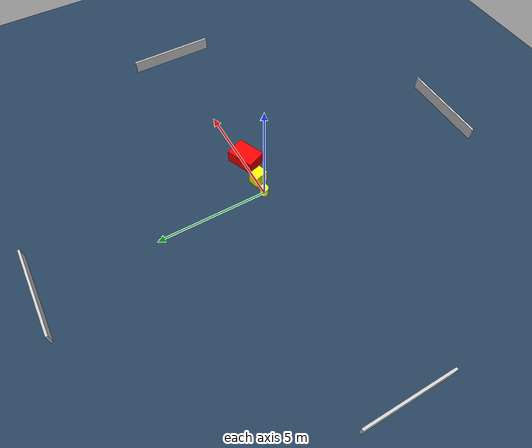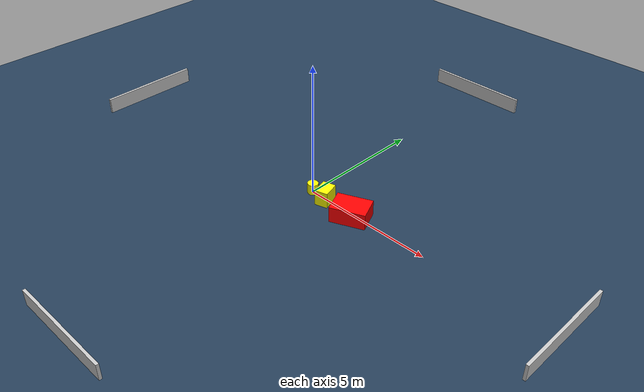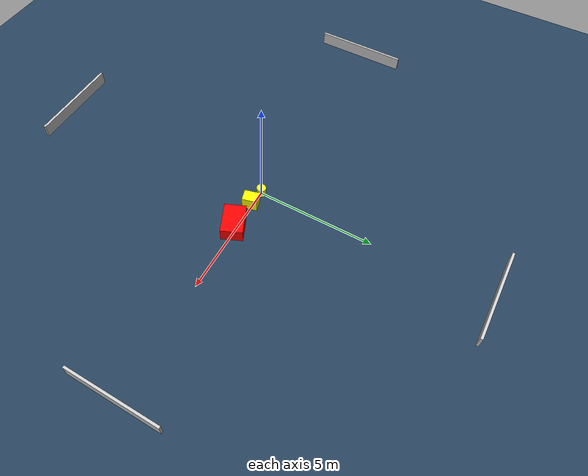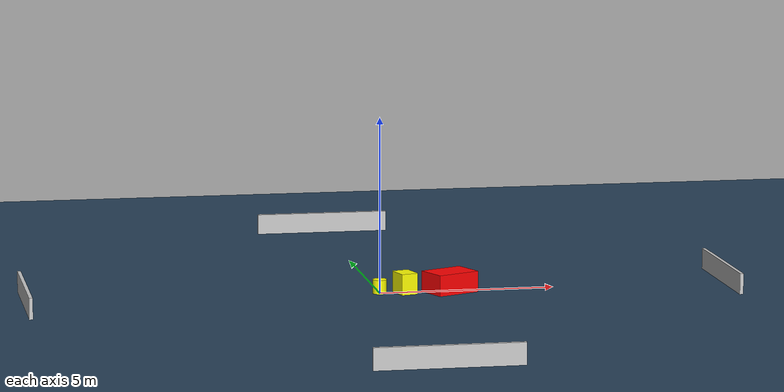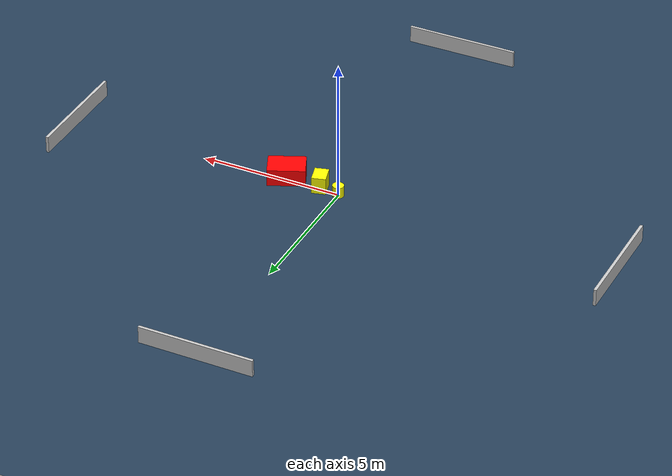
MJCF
<?xml version="1.0" ?>
<mujoco model="generated_environment">
  <option timestep="0.01" integrator="RK4" cone="elliptic"/>
  <default>
    <geom density="1"/>
  </default>
  <asset>
    <texture builtin="gradient" height="3072" name="skybox" rgb1="0.3 0.5 0.7" rgb2="0 0 0" type="skybox" width="512"/>
    <texture builtin="checker" height="300" name="groundplane" rgb1="0.2 0.3 0.4" rgb2="0.1 0.2 0.3" type="2d" width="300"/>
    <material name="groundplane" reflectance="0.2" texrepeat="5 5" texture="groundplane"/>
  </asset>
  <worldbody>
    <light dir="0 0 -1" directional="true" pos="0 0 1.5"/>
    <geom condim="3" friction="0.5 0.005 0.001" material="groundplane" name="floor" pos="0 0 0" size="0 0 0.05" type="plane"/>
    <body name="walls">
      <geom name="wall_1" condim="4" pos="-10.0 0.0 0.3" rgba="0.800000011920929 0.800000011920929 0.800000011920929 1.0" size="0.05 2.0 0.3" type="box"/>
      <geom name="wall_2" condim="4" pos="10.0 0.0 0.3" rgba="0.800000011920929 0.800000011920929 0.800000011920929 1.0" size="0.05 2.0 0.3" type="box"/>
      <geom name="wall_3" condim="4" pos="0.0 -10.0 0.3" rgba="0.800000011920929 0.800000011920929 0.800000011920929 1.0" size="2.0 0.05 0.3" type="box"/>
      <geom name="wall_4" condim="4" pos="0.0 10.0 0.3" rgba="0.800000011920929 0.800000011920929 0.800000011920929 1.0" size="2.0 0.05 0.3" type="box"/>
    </body>
    <body name="robot">
      <joint name="joint_x" type="slide" pos="0 0 0" axis="1 0 0"/>
      <joint name="joint_y" type="slide" pos="0 0 0" axis="0 1 0"/>
      <geom name="robot" type="cylinder" pos="0.0 0.0 0.2" size="0.2 0.2 0.0" mass="5.0" friction="1.0 0.005 0.0001" condim="4" rgba="1.0 1.0 0.0 1.0"/>
    </body>
    <body name="obstacle_1_movable">
      <geom name="obstacle_1_movable" condim="4" pos="0.709536466516141 -0.09373441052976483 0.3" euler="0 0 105.29877599112346" friction="0.0 0.005 0.001" rgba="1.0 1.0 0.0 1.0" size="0.31773349887155805 0.24449232968087958 0.3" type="box" mass="0.1"/>
      <joint type="free"/>
    </body>
    <body name="obstacle_2_static">
      <geom name="obstacle_2_static" condim="4" pos="1.9885247617806174 -0.14613720311159611 0.3" euler="0 0 23.693764383316744" friction="0.0 0.005 0.001" rgba="1.0 0.0 0.0 1.0" size="0.6489696354423611 0.4560817822298122 0.3" type="box"/>
    </body>
  </worldbody>
  <actuator>
    <motor name="actuator_x" joint="joint_x" gear="1" ctrlrange="-1 1"/>
    <motor name="actuator_y" joint="joint_y" gear="1" ctrlrange="-1 1"/>
  </actuator>
</mujoco>
